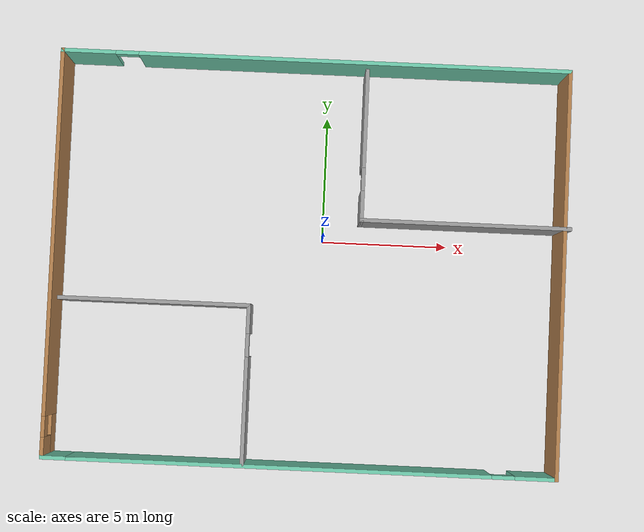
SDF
<?xml version='1.0'?>
<sdf version='1.6'>
  <model name='udacity'>
    <pose frame=''>-0.447101 -1.01478 0 0 -0 0</pose>
    <link name='Wall_12'>
      <pose frame=''>-0.093204 7.925 0 0 -0 0</pose>
      <visual name='Wall_12_Visual_0'>
        <pose frame=''>-8.92618 0 1.25 0 -0 0</pose>
        <geometry>
          <box>
            <size>2.14764 0.15 2.5</size>
          </box>
        </geometry>
        <material>
          <script>
            <uri>file://media/materials/scripts/gazebo.material</uri>
            <name>Gazebo/Grey</name>
          </script>
          <ambient>0.435294 0.796078 0.67451 1</ambient>
        </material>
      </visual>
      <collision name='Wall_12_Collision_0'>
        <geometry>
          <box>
            <size>2.14764 0.15 2.5</size>
          </box>
        </geometry>
        <pose frame=''>-8.92618 0 1.25 0 -0 0</pose>
      </collision>
      <visual name='Wall_12_Visual_1'>
        <pose frame=''>1.52382 0 1.25 0 -0 0</pose>
        <geometry>
          <box>
            <size>16.9524 0.15 2.5</size>
          </box>
        </geometry>
        <material>
          <script>
            <uri>file://media/materials/scripts/gazebo.material</uri>
            <name>Gazebo/Grey</name>
          </script>
          <ambient>0.435294 0.796078 0.67451 1</ambient>
        </material>
      </visual>
      <collision name='Wall_12_Collision_1'>
        <geometry>
          <box>
            <size>16.9524 0.15 2.5</size>
          </box>
        </geometry>
        <pose frame=''>1.52382 0 1.25 0 -0 0</pose>
      </collision>
      <visual name='Wall_12_Visual_2'>
        <pose frame=''>-7.40236 0 2.25 0 -0 0</pose>
        <geometry>
          <box>
            <size>0.9 0.15 0.5</size>
          </box>
        </geometry>
        <material>
          <script>
            <uri>file://media/materials/scripts/gazebo.material</uri>
            <name>Gazebo/Grey</name>
          </script>
          <ambient>0.435294 0.796078 0.67451 1</ambient>
        </material>
      </visual>
      <collision name='Wall_12_Collision_2'>
        <geometry>
          <box>
            <size>0.9 0.15 0.5</size>
          </box>
        </geometry>
        <pose frame=''>-7.40236 0 2.25 0 -0 0</pose>
      </collision>
    </link>
    <link name='Wall_13'>
      <collision name='Wall_13_Collision'>
        <geometry>
          <box>
            <size>16 0.15 2.5</size>
          </box>
        </geometry>
        <pose frame=''>0 0 1.25 0 -0 0</pose>
      </collision>
      <visual name='Wall_13_Visual'>
        <pose frame=''>0 0 1.25 0 -0 0</pose>
        <geometry>
          <box>
            <size>16 0.15 2.5</size>
          </box>
        </geometry>
        <material>
          <script>
            <uri>file://media/materials/scripts/gazebo.material</uri>
            <name>Gazebo/Wood</name>
          </script>
          <ambient>0.435294 0.796078 0.67451 1</ambient>
        </material>
      </visual>
      <pose frame=''>9.8318 0 0 0 0 -1.5708</pose>
    </link>
    <link name='Wall_14'>
      <pose frame=''>0.406796 -7.925 0 0 -0 3.14159</pose>
      <visual name='Wall_14_Visual_0'>
        <pose frame=''>-8.65904 0 1.25 0 -0 0</pose>
        <geometry>
          <box>
            <size>1.68192 0.15 2.5</size>
          </box>
        </geometry>
        <material>
          <script>
            <uri>file://media/materials/scripts/gazebo.material</uri>
            <name>Gazebo/Grey</name>
          </script>
          <ambient>0.435294 0.796078 0.67451 1</ambient>
        </material>
      </visual>
      <collision name='Wall_14_Collision_0'>
        <geometry>
          <box>
            <size>1.68192 0.15 2.5</size>
          </box>
        </geometry>
        <pose frame=''>-8.65904 0 1.25 0 -0 0</pose>
      </collision>
      <visual name='Wall_14_Visual_1'>
        <pose frame=''>1.29096 0 1.25 0 -0 0</pose>
        <geometry>
          <box>
            <size>16.4181 0.15 2.5</size>
          </box>
        </geometry>
        <material>
          <script>
            <uri>file://media/materials/scripts/gazebo.material</uri>
            <name>Gazebo/Grey</name>
          </script>
          <ambient>0.435294 0.796078 0.67451 1</ambient>
        </material>
      </visual>
      <collision name='Wall_14_Collision_1'>
        <geometry>
          <box>
            <size>16.4181 0.15 2.5</size>
          </box>
        </geometry>
        <pose frame=''>1.29096 0 1.25 0 -0 0</pose>
      </collision>
      <visual name='Wall_14_Visual_2'>
        <pose frame=''>-7.36808 0 2.25 0 -0 0</pose>
        <geometry>
          <box>
            <size>0.9 0.15 0.5</size>
          </box>
        </geometry>
        <material>
          <script>
            <uri>file://media/materials/scripts/gazebo.material</uri>
            <name>Gazebo/Grey</name>
          </script>
          <ambient>0.435294 0.796078 0.67451 1</ambient>
        </material>
      </visual>
      <collision name='Wall_14_Collision_2'>
        <geometry>
          <box>
            <size>0.9 0.15 0.5</size>
          </box>
        </geometry>
        <pose frame=''>-7.36808 0 2.25 0 -0 0</pose>
      </collision>
    </link>
    <link name='Wall_17'>
      <pose frame=''>-10.0182 0 0 0 0 -1.5708</pose>
      <visual name='Wall_17_Visual_0'>
        <pose frame=''>-0.825647 0 1.25 0 -0 0</pose>
        <geometry>
          <box>
            <size>14.3487 0.15 2.5</size>
          </box>
        </geometry>
        <material>
          <script>
            <uri>file://media/materials/scripts/gazebo.material</uri>
            <name>Gazebo/Wood</name>
          </script>
          <ambient>0.435294 0.796078 0.67451 1</ambient>
        </material>
      </visual>
      <collision name='Wall_17_Collision_0'>
        <geometry>
          <box>
            <size>14.3487 0.15 2.5</size>
          </box>
        </geometry>
        <pose frame=''>-0.825647 0 1.25 0 -0 0</pose>
      </collision>
      <visual name='Wall_17_Visual_1'>
        <pose frame=''>7.17435 0 0.5 0 -0 0</pose>
        <geometry>
          <box>
            <size>1.65129 0.15 1</size>
          </box>
        </geometry>
        <material>
          <script>
            <uri>file://media/materials/scripts/gazebo.material</uri>
            <name>Gazebo/Wood</name>
          </script>
          <ambient>0.435294 0.796078 0.67451 1</ambient>
        </material>
      </visual>
      <collision name='Wall_17_Collision_1'>
        <geometry>
          <box>
            <size>1.65129 0.15 1</size>
          </box>
        </geometry>
        <pose frame=''>7.17435 0 0.5 0 -0 0</pose>
      </collision>
      <visual name='Wall_17_Visual_2'>
        <pose frame=''>7.57435 0 1.75 0 -0 0</pose>
        <geometry>
          <box>
            <size>0.851294 0.15 1.5</size>
          </box>
        </geometry>
        <material>
          <script>
            <uri>file://media/materials/scripts/gazebo.material</uri>
            <name>Gazebo/Wood</name>
          </script>
          <ambient>0.435294 0.796078 0.67451 1</ambient>
        </material>
      </visual>
      <collision name='Wall_17_Collision_2'>
        <geometry>
          <box>
            <size>0.851294 0.15 1.5</size>
          </box>
        </geometry>
        <pose frame=''>7.57435 0 1.75 0 -0 0</pose>
      </collision>
      <visual name='Wall_17_Visual_3'>
        <pose frame=''>6.74871 0 2.15 0 -0 0</pose>
        <geometry>
          <box>
            <size>0.8 0.15 0.7</size>
          </box>
        </geometry>
        <material>
          <script>
            <uri>file://media/materials/scripts/gazebo.material</uri>
            <name>Gazebo/Wood</name>
          </script>
          <ambient>0.435294 0.796078 0.67451 1</ambient>
        </material>
      </visual>
      <collision name='Wall_17_Collision_3'>
        <geometry>
          <box>
            <size>0.8 0.15 0.7</size>
          </box>
        </geometry>
        <pose frame=''>6.74871 0 2.15 0 -0 0</pose>
      </collision>
    </link>
    <link name='Wall_18'>
      <collision name='Wall_18_Collision'>
        <geometry>
          <box>
            <size>1.5 0.15 2.5</size>
          </box>
        </geometry>
        <pose frame=''>0 0 1.25 0 -0 0</pose>
      </collision>
      <visual name='Wall_18_Visual'>
        <pose frame=''>0 0 1.25 0 -0 0</pose>
        <geometry>
          <box>
            <size>1.5 0.15 2.5</size>
          </box>
        </geometry>
        <material>
          <script>
            <uri>file://media/materials/scripts/gazebo.material</uri>
            <name>Gazebo/Grey</name>
          </script>
          <ambient>0.435294 0.796078 0.67451 1</ambient>
        </material>
      </visual>
      <pose frame=''>-9.3432 -7.925 0 0 -0 0</pose>
    </link>
    <link name='Wall_20'>
      <collision name='Wall_20_Collision'>
        <geometry>
          <box>
            <size>7.5 0.15 2.5</size>
          </box>
        </geometry>
        <pose frame=''>0 0 1.25 0 -0 0</pose>
      </collision>
      <visual name='Wall_20_Visual'>
        <pose frame=''>0 0 1.25 0 -0 0</pose>
        <geometry>
          <box>
            <size>7.5 0.15 2.5</size>
          </box>
        </geometry>
        <material>
          <script>
            <uri>file://media/materials/scripts/gazebo.material</uri>
            <name>Gazebo/Grey</name>
          </script>
          <ambient>1 1 1 1</ambient>
        </material>
      </visual>
      <pose frame=''>-5.97404 -1.73488 0 0 -0 0</pose>
    </link>
    <link name='Wall_21'>
      <pose frame=''>-2.29904 -4.78488 0 0 0 -1.5708</pose>
      <visual name='Wall_21_Visual_0'>
        <pose frame=''>-2.5434 0 1.25 0 -0 0</pose>
        <geometry>
          <box>
            <size>1.1632 0.15 2.5</size>
          </box>
        </geometry>
        <material>
          <script>
            <uri>file://media/materials/scripts/gazebo.material</uri>
            <name>Gazebo/Grey</name>
          </script>
          <ambient>1 1 1 1</ambient>
        </material>
      </visual>
      <collision name='Wall_21_Collision_0'>
        <geometry>
          <box>
            <size>1.1632 0.15 2.5</size>
          </box>
        </geometry>
        <pose frame=''>-2.5434 0 1.25 0 -0 0</pose>
      </collision>
      <visual name='Wall_21_Visual_1'>
        <pose frame=''>1.0316 0 1.25 0 -0 0</pose>
        <geometry>
          <box>
            <size>4.1868 0.15 2.5</size>
          </box>
        </geometry>
        <material>
          <script>
            <uri>file://media/materials/scripts/gazebo.material</uri>
            <name>Gazebo/Grey</name>
          </script>
          <ambient>1 1 1 1</ambient>
        </material>
      </visual>
      <collision name='Wall_21_Collision_1'>
        <geometry>
          <box>
            <size>4.1868 0.15 2.5</size>
          </box>
        </geometry>
        <pose frame=''>1.0316 0 1.25 0 -0 0</pose>
      </collision>
      <visual name='Wall_21_Visual_2'>
        <pose frame=''>-1.5118 0 2.25 0 -0 0</pose>
        <geometry>
          <box>
            <size>0.9 0.15 0.5</size>
          </box>
        </geometry>
        <material>
          <script>
            <uri>file://media/materials/scripts/gazebo.material</uri>
            <name>Gazebo/Grey</name>
          </script>
          <ambient>1 1 1 1</ambient>
        </material>
      </visual>
      <collision name='Wall_21_Collision_2'>
        <geometry>
          <box>
            <size>0.9 0.15 0.5</size>
          </box>
        </geometry>
        <pose frame=''>-1.5118 0 2.25 0 -0 0</pose>
      </collision>
    </link>
    <link name='Wall_23'>
      <pose frame=''>1.9182 4.69236 0 0 0 -1.5708</pose>
      <visual name='Wall_23_Visual_0'>
        <pose frame=''>-1.06479 0 1.25 0 -0 0</pose>
        <geometry>
          <box>
            <size>3.87042 0.15 2.5</size>
          </box>
        </geometry>
        <material>
          <script>
            <uri>file://media/materials/scripts/gazebo.material</uri>
            <name>Gazebo/Grey</name>
          </script>
          <ambient>1 1 1 1</ambient>
        </material>
      </visual>
      <collision name='Wall_23_Collision_0'>
        <geometry>
          <box>
            <size>3.87042 0.15 2.5</size>
          </box>
        </geometry>
        <pose frame=''>-1.06479 0 1.25 0 -0 0</pose>
      </collision>
      <visual name='Wall_23_Visual_1'>
        <pose frame=''>2.38521 0 1.25 0 -0 0</pose>
        <geometry>
          <box>
            <size>1.22958 0.15 2.5</size>
          </box>
        </geometry>
        <material>
          <script>
            <uri>file://media/materials/scripts/gazebo.material</uri>
            <name>Gazebo/Grey</name>
          </script>
          <ambient>1 1 1 1</ambient>
        </material>
      </visual>
      <collision name='Wall_23_Collision_1'>
        <geometry>
          <box>
            <size>1.22958 0.15 2.5</size>
          </box>
        </geometry>
        <pose frame=''>2.38521 0 1.25 0 -0 0</pose>
      </collision>
      <visual name='Wall_23_Visual_2'>
        <pose frame=''>1.32042 0 2.25 0 -0 0</pose>
        <geometry>
          <box>
            <size>0.9 0.15 0.5</size>
          </box>
        </geometry>
        <material>
          <script>
            <uri>file://media/materials/scripts/gazebo.material</uri>
            <name>Gazebo/Grey</name>
          </script>
          <ambient>1 1 1 1</ambient>
        </material>
      </visual>
      <collision name='Wall_23_Collision_2'>
        <geometry>
          <box>
            <size>0.9 0.15 0.5</size>
          </box>
        </geometry>
        <pose frame=''>1.32042 0 2.25 0 -0 0</pose>
      </collision>
    </link>
    <link name='Wall_24'>
      <collision name='Wall_24_Collision'>
        <geometry>
          <box>
            <size>8.25 0.15 2.5</size>
          </box>
        </geometry>
        <pose frame=''>0 0 1.25 0 -0 0</pose>
      </collision>
      <visual name='Wall_24_Visual'>
        <pose frame=''>0 0 1.25 0 -0 0</pose>
        <geometry>
          <box>
            <size>8.25 0.15 2.5</size>
          </box>
        </geometry>
        <material>
          <script>
            <uri>file://media/materials/scripts/gazebo.material</uri>
            <name>Gazebo/Grey</name>
          </script>
          <ambient>1 1 1 1</ambient>
        </material>
      </visual>
      <pose frame=''>5.9682 1.76736 0 0 -0 0</pose>
    </link>
    <static>1</static>
  </model>
</sdf>
